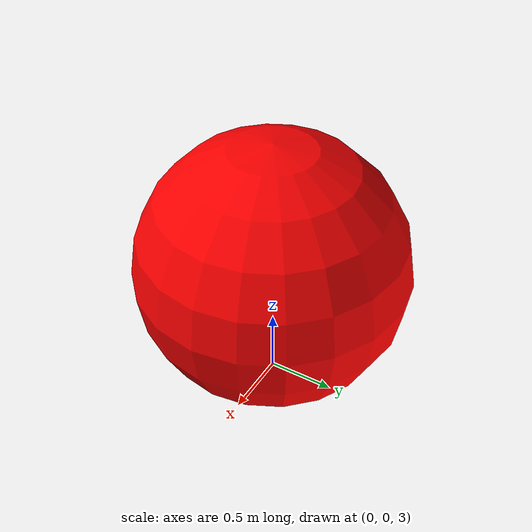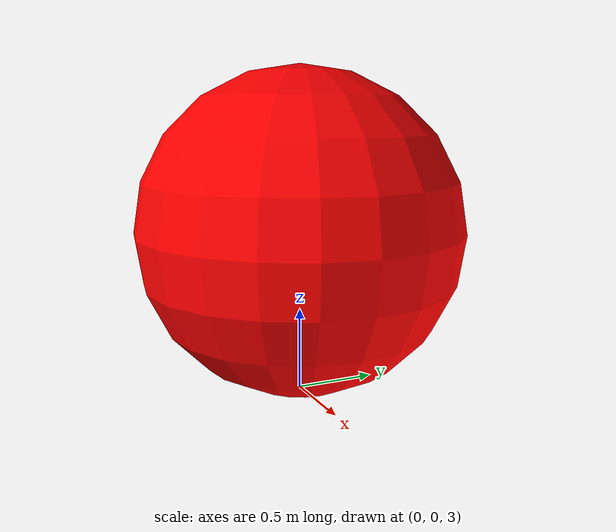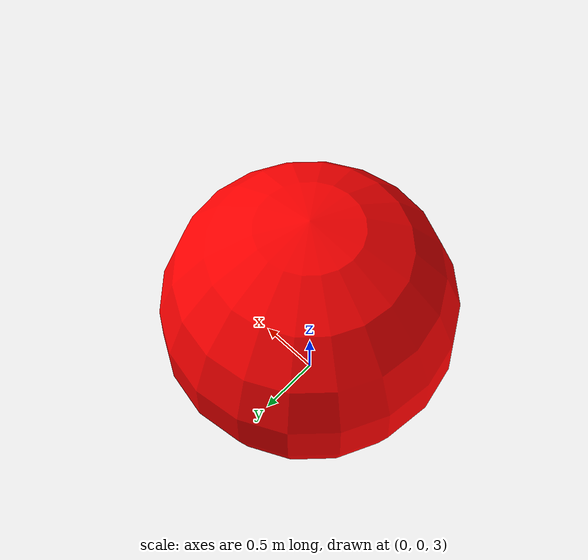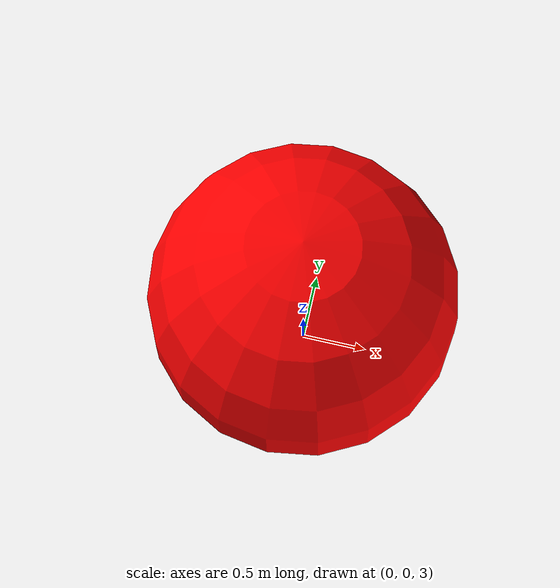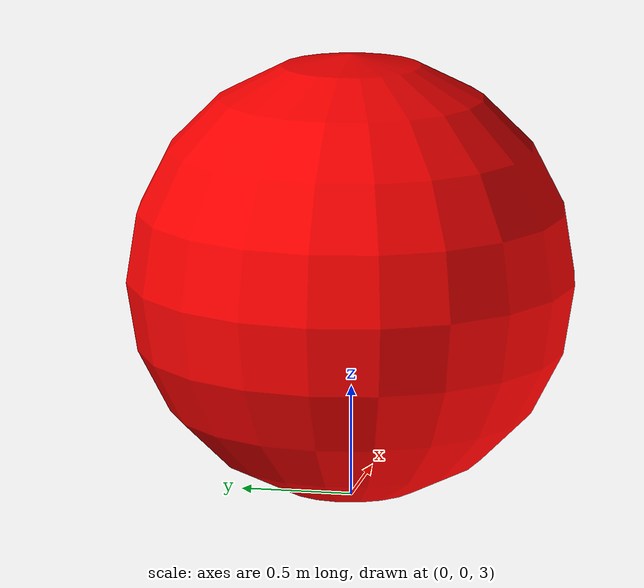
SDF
<?xml version="1.0"?>
<sdf version="1.9">
  <model name='red_balloon'>
    <static>1</static>
    <pose>0 0 4 0 0 0</pose>
    <link name='link'>
      <collision name="collision">
        <geometry>
          <sphere>
            <radius>1</radius>
          </sphere>
        </geometry>
      </collision>
      <visual name="visual">
        <geometry>
          <sphere>
            <radius>1</radius>
          </sphere>
        </geometry>
        <material>
          <ambient>1 0 0 1</ambient>
          <diffuse>1 0 0 1</diffuse>
          <specular>0.1 0.1 0.1 1</specular>
        </material>
      </visual>
    </link>
  </model>
</sdf>
